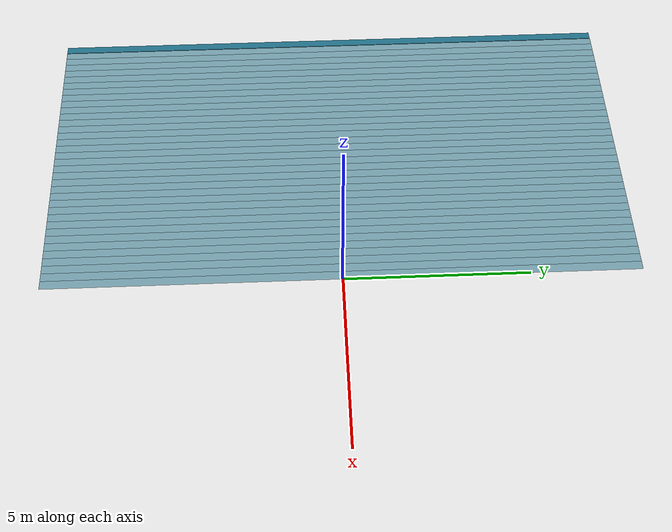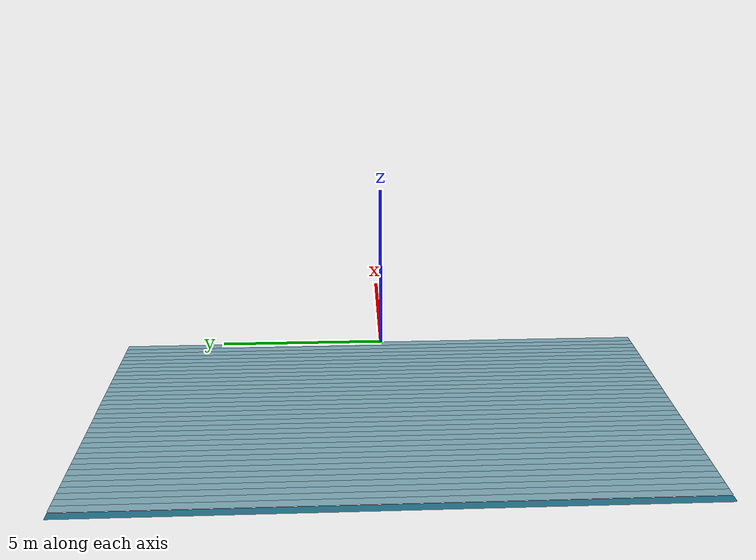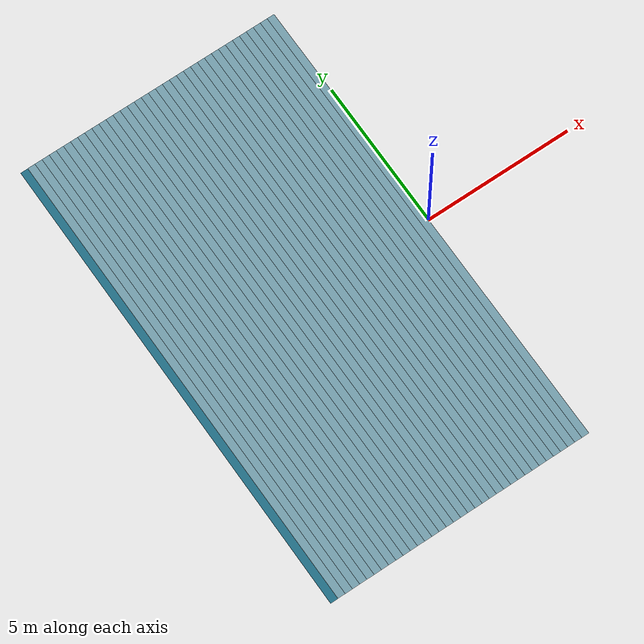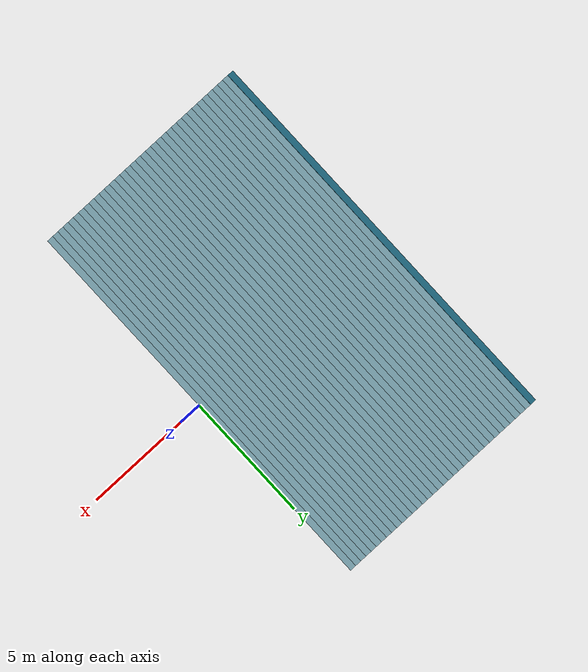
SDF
<sdf version="1.10">
 <world name="OceanWorld">
  <model name="pool_ripple_00">
   <static>true</static>
   <pose>-8.875 0 0 0 0 0</pose>
   <link name="surface">
    <visual name="water">
     <cast_shadows>false</cast_shadows>
     <transparency>0.45</transparency>
     <geometry><plane><normal>0 0 1</normal><size>.251 16</size></plane></geometry>
     <material>
      <ambient>.10 .35 .42 1</ambient>
      <diffuse>.14 .46 .56 1</diffuse>
      <specular>.9 .95 1 1</specular>
      <pbr><metal><metalness>0</metalness><roughness>.16</roughness></metal></pbr>
     </material>
    </visual>
   </link>
  </model>
  <model name="pool_ripple_01">
   <static>true</static>
   <pose>-8.625 0 0 0 0 0</pose>
   <link name="surface">
    <visual name="water">
     <cast_shadows>false</cast_shadows>
     <transparency>0.45</transparency>
     <geometry><plane><normal>0 0 1</normal><size>.251 16</size></plane></geometry>
     <material>
      <ambient>.10 .35 .42 1</ambient>
      <diffuse>.14 .46 .56 1</diffuse>
      <specular>.9 .95 1 1</specular>
      <pbr><metal><metalness>0</metalness><roughness>.16</roughness></metal></pbr>
     </material>
    </visual>
   </link>
  </model>
  <model name="pool_ripple_02">
   <static>true</static>
   <pose>-8.375 0 0 0 0 0</pose>
   <link name="surface">
    <visual name="water">
     <cast_shadows>false</cast_shadows>
     <transparency>0.45</transparency>
     <geometry><plane><normal>0 0 1</normal><size>.251 16</size></plane></geometry>
     <material>
      <ambient>.10 .35 .42 1</ambient>
      <diffuse>.14 .46 .56 1</diffuse>
      <specular>.9 .95 1 1</specular>
      <pbr><metal><metalness>0</metalness><roughness>.16</roughness></metal></pbr>
     </material>
    </visual>
   </link>
  </model>
  <model name="pool_ripple_03">
   <static>true</static>
   <pose>-8.125 0 0 0 0 0</pose>
   <link name="surface">
    <visual name="water">
     <cast_shadows>false</cast_shadows>
     <transparency>0.45</transparency>
     <geometry><plane><normal>0 0 1</normal><size>.251 16</size></plane></geometry>
     <material>
      <ambient>.10 .35 .42 1</ambient>
      <diffuse>.14 .46 .56 1</diffuse>
      <specular>.9 .95 1 1</specular>
      <pbr><metal><metalness>0</metalness><roughness>.16</roughness></metal></pbr>
     </material>
    </visual>
   </link>
  </model>
  <model name="pool_ripple_04">
   <static>true</static>
   <pose>-7.875 0 0 0 0 0</pose>
   <link name="surface">
    <visual name="water">
     <cast_shadows>false</cast_shadows>
     <transparency>0.45</transparency>
     <geometry><plane><normal>0 0 1</normal><size>.251 16</size></plane></geometry>
     <material>
      <ambient>.10 .35 .42 1</ambient>
      <diffuse>.14 .46 .56 1</diffuse>
      <specular>.9 .95 1 1</specular>
      <pbr><metal><metalness>0</metalness><roughness>.16</roughness></metal></pbr>
     </material>
    </visual>
   </link>
  </model>
  <model name="pool_ripple_05">
   <static>true</static>
   <pose>-7.625 0 0 0 0 0</pose>
   <link name="surface">
    <visual name="water">
     <cast_shadows>false</cast_shadows>
     <transparency>0.45</transparency>
     <geometry><plane><normal>0 0 1</normal><size>.251 16</size></plane></geometry>
     <material>
      <ambient>.10 .35 .42 1</ambient>
      <diffuse>.14 .46 .56 1</diffuse>
      <specular>.9 .95 1 1</specular>
      <pbr><metal><metalness>0</metalness><roughness>.16</roughness></metal></pbr>
     </material>
    </visual>
   </link>
  </model>
  <model name="pool_ripple_06">
   <static>true</static>
   <pose>-7.375 0 0 0 0 0</pose>
   <link name="surface">
    <visual name="water">
     <cast_shadows>false</cast_shadows>
     <transparency>0.45</transparency>
     <geometry><plane><normal>0 0 1</normal><size>.251 16</size></plane></geometry>
     <material>
      <ambient>.10 .35 .42 1</ambient>
      <diffuse>.14 .46 .56 1</diffuse>
      <specular>.9 .95 1 1</specular>
      <pbr><metal><metalness>0</metalness><roughness>.16</roughness></metal></pbr>
     </material>
    </visual>
   </link>
  </model>
  <model name="pool_ripple_07">
   <static>true</static>
   <pose>-7.125 0 0 0 0 0</pose>
   <link name="surface">
    <visual name="water">
     <cast_shadows>false</cast_shadows>
     <transparency>0.45</transparency>
     <geometry><plane><normal>0 0 1</normal><size>.251 16</size></plane></geometry>
     <material>
      <ambient>.10 .35 .42 1</ambient>
      <diffuse>.14 .46 .56 1</diffuse>
      <specular>.9 .95 1 1</specular>
      <pbr><metal><metalness>0</metalness><roughness>.16</roughness></metal></pbr>
     </material>
    </visual>
   </link>
  </model>
  <model name="pool_ripple_08">
   <static>true</static>
   <pose>-6.875 0 0 0 0 0</pose>
   <link name="surface">
    <visual name="water">
     <cast_shadows>false</cast_shadows>
     <transparency>0.45</transparency>
     <geometry><plane><normal>0 0 1</normal><size>.251 16</size></plane></geometry>
     <material>
      <ambient>.10 .35 .42 1</ambient>
      <diffuse>.14 .46 .56 1</diffuse>
      <specular>.9 .95 1 1</specular>
      <pbr><metal><metalness>0</metalness><roughness>.16</roughness></metal></pbr>
     </material>
    </visual>
   </link>
  </model>
  <model name="pool_ripple_09">
   <static>true</static>
   <pose>-6.625 0 0 0 0 0</pose>
   <link name="surface">
    <visual name="water">
     <cast_shadows>false</cast_shadows>
     <transparency>0.45</transparency>
     <geometry><plane><normal>0 0 1</normal><size>.251 16</size></plane></geometry>
     <material>
      <ambient>.10 .35 .42 1</ambient>
      <diffuse>.14 .46 .56 1</diffuse>
      <specular>.9 .95 1 1</specular>
      <pbr><metal><metalness>0</metalness><roughness>.16</roughness></metal></pbr>
     </material>
    </visual>
   </link>
  </model>
  <model name="pool_ripple_10">
   <static>true</static>
   <pose>-6.375 0 0 0 0 0</pose>
   <link name="surface">
    <visual name="water">
     <cast_shadows>false</cast_shadows>
     <transparency>0.45</transparency>
     <geometry><plane><normal>0 0 1</normal><size>.251 16</size></plane></geometry>
     <material>
      <ambient>.10 .35 .42 1</ambient>
      <diffuse>.14 .46 .56 1</diffuse>
      <specular>.9 .95 1 1</specular>
      <pbr><metal><metalness>0</metalness><roughness>.16</roughness></metal></pbr>
     </material>
    </visual>
   </link>
  </model>
  <model name="pool_ripple_11">
   <static>true</static>
   <pose>-6.125 0 0 0 0 0</pose>
   <link name="surface">
    <visual name="water">
     <cast_shadows>false</cast_shadows>
     <transparency>0.45</transparency>
     <geometry><plane><normal>0 0 1</normal><size>.251 16</size></plane></geometry>
     <material>
      <ambient>.10 .35 .42 1</ambient>
      <diffuse>.14 .46 .56 1</diffuse>
      <specular>.9 .95 1 1</specular>
      <pbr><metal><metalness>0</metalness><roughness>.16</roughness></metal></pbr>
     </material>
    </visual>
   </link>
  </model>
  <model name="pool_ripple_12">
   <static>true</static>
   <pose>-5.875 0 0 0 0 0</pose>
   <link name="surface">
    <visual name="water">
     <cast_shadows>false</cast_shadows>
     <transparency>0.45</transparency>
     <geometry><plane><normal>0 0 1</normal><size>.251 16</size></plane></geometry>
     <material>
      <ambient>.10 .35 .42 1</ambient>
      <diffuse>.14 .46 .56 1</diffuse>
      <specular>.9 .95 1 1</specular>
      <pbr><metal><metalness>0</metalness><roughness>.16</roughness></metal></pbr>
     </material>
    </visual>
   </link>
  </model>
  <model name="pool_ripple_13">
   <static>true</static>
   <pose>-5.625 0 0 0 0 0</pose>
   <link name="surface">
    <visual name="water">
     <cast_shadows>false</cast_shadows>
     <transparency>0.45</transparency>
     <geometry><plane><normal>0 0 1</normal><size>.251 16</size></plane></geometry>
     <material>
      <ambient>.10 .35 .42 1</ambient>
      <diffuse>.14 .46 .56 1</diffuse>
      <specular>.9 .95 1 1</specular>
      <pbr><metal><metalness>0</metalness><roughness>.16</roughness></metal></pbr>
     </material>
    </visual>
   </link>
  </model>
  <model name="pool_ripple_14">
   <static>true</static>
   <pose>-5.375 0 0 0 0 0</pose>
   <link name="surface">
    <visual name="water">
     <cast_shadows>false</cast_shadows>
     <transparency>0.45</transparency>
     <geometry><plane><normal>0 0 1</normal><size>.251 16</size></plane></geometry>
     <material>
      <ambient>.10 .35 .42 1</ambient>
      <diffuse>.14 .46 .56 1</diffuse>
      <specular>.9 .95 1 1</specular>
      <pbr><metal><metalness>0</metalness><roughness>.16</roughness></metal></pbr>
     </material>
    </visual>
   </link>
  </model>
  <model name="pool_ripple_15">
   <static>true</static>
   <pose>-5.125 0 0 0 0 0</pose>
   <link name="surface">
    <visual name="water">
     <cast_shadows>false</cast_shadows>
     <transparency>0.45</transparency>
     <geometry><plane><normal>0 0 1</normal><size>.251 16</size></plane></geometry>
     <material>
      <ambient>.10 .35 .42 1</ambient>
      <diffuse>.14 .46 .56 1</diffuse>
      <specular>.9 .95 1 1</specular>
      <pbr><metal><metalness>0</metalness><roughness>.16</roughness></metal></pbr>
     </material>
    </visual>
   </link>
  </model>
  <model name="pool_ripple_16">
   <static>true</static>
   <pose>-4.875 0 0 0 0 0</pose>
   <link name="surface">
    <visual name="water">
     <cast_shadows>false</cast_shadows>
     <transparency>0.45</transparency>
     <geometry><plane><normal>0 0 1</normal><size>.251 16</size></plane></geometry>
     <material>
      <ambient>.10 .35 .42 1</ambient>
      <diffuse>.14 .46 .56 1</diffuse>
      <specular>.9 .95 1 1</specular>
      <pbr><metal><metalness>0</metalness><roughness>.16</roughness></metal></pbr>
     </material>
    </visual>
   </link>
  </model>
  <model name="pool_ripple_17">
   <static>true</static>
   <pose>-4.625 0 0 0 0 0</pose>
   <link name="surface">
    <visual name="water">
     <cast_shadows>false</cast_shadows>
     <transparency>0.45</transparency>
     <geometry><plane><normal>0 0 1</normal><size>.251 16</size></plane></geometry>
     <material>
      <ambient>.10 .35 .42 1</ambient>
      <diffuse>.14 .46 .56 1</diffuse>
      <specular>.9 .95 1 1</specular>
      <pbr><metal><metalness>0</metalness><roughness>.16</roughness></metal></pbr>
     </material>
    </visual>
   </link>
  </model>
  <model name="pool_ripple_18">
   <static>true</static>
   <pose>-4.375 0 0 0 0 0</pose>
   <link name="surface">
    <visual name="water">
     <cast_shadows>false</cast_shadows>
     <transparency>0.45</transparency>
     <geometry><plane><normal>0 0 1</normal><size>.251 16</size></plane></geometry>
     <material>
      <ambient>.10 .35 .42 1</ambient>
      <diffuse>.14 .46 .56 1</diffuse>
      <specular>.9 .95 1 1</specular>
      <pbr><metal><metalness>0</metalness><roughness>.16</roughness></metal></pbr>
     </material>
    </visual>
   </link>
  </model>
  <model name="pool_ripple_19">
   <static>true</static>
   <pose>-4.125 0 0 0 0 0</pose>
   <link name="surface">
    <visual name="water">
     <cast_shadows>false</cast_shadows>
     <transparency>0.45</transparency>
     <geometry><plane><normal>0 0 1</normal><size>.251 16</size></plane></geometry>
     <material>
      <ambient>.10 .35 .42 1</ambient>
      <diffuse>.14 .46 .56 1</diffuse>
      <specular>.9 .95 1 1</specular>
      <pbr><metal><metalness>0</metalness><roughness>.16</roughness></metal></pbr>
     </material>
    </visual>
   </link>
  </model>
  <model name="pool_ripple_20">
   <static>true</static>
   <pose>-3.875 0 0 0 0 0</pose>
   <link name="surface">
    <visual name="water">
     <cast_shadows>false</cast_shadows>
     <transparency>0.45</transparency>
     <geometry><plane><normal>0 0 1</normal><size>.251 16</size></plane></geometry>
     <material>
      <ambient>.10 .35 .42 1</ambient>
      <diffuse>.14 .46 .56 1</diffuse>
      <specular>.9 .95 1 1</specular>
      <pbr><metal><metalness>0</metalness><roughness>.16</roughness></metal></pbr>
     </material>
    </visual>
   </link>
  </model>
  <model name="pool_ripple_21">
   <static>true</static>
   <pose>-3.625 0 0 0 0 0</pose>
   <link name="surface">
    <visual name="water">
     <cast_shadows>false</cast_shadows>
     <transparency>0.45</transparency>
     <geometry><plane><normal>0 0 1</normal><size>.251 16</size></plane></geometry>
     <material>
      <ambient>.10 .35 .42 1</ambient>
      <diffuse>.14 .46 .56 1</diffuse>
      <specular>.9 .95 1 1</specular>
      <pbr><metal><metalness>0</metalness><roughness>.16</roughness></metal></pbr>
     </material>
    </visual>
   </link>
  </model>
  <model name="pool_ripple_22">
   <static>true</static>
   <pose>-3.375 0 0 0 0 0</pose>
   <link name="surface">
    <visual name="water">
     <cast_shadows>false</cast_shadows>
     <transparency>0.45</transparency>
     <geometry><plane><normal>0 0 1</normal><size>.251 16</size></plane></geometry>
     <material>
      <ambient>.10 .35 .42 1</ambient>
      <diffuse>.14 .46 .56 1</diffuse>
      <specular>.9 .95 1 1</specular>
      <pbr><metal><metalness>0</metalness><roughness>.16</roughness></metal></pbr>
     </material>
    </visual>
   </link>
  </model>
  <model name="pool_ripple_23">
   <static>true</static>
   <pose>-3.125 0 0 0 0 0</pose>
   <link name="surface">
    <visual name="water">
     <cast_shadows>false</cast_shadows>
     <transparency>0.45</transparency>
     <geometry><plane><normal>0 0 1</normal><size>.251 16</size></plane></geometry>
     <material>
      <ambient>.10 .35 .42 1</ambient>
      <diffuse>.14 .46 .56 1</diffuse>
      <specular>.9 .95 1 1</specular>
      <pbr><metal><metalness>0</metalness><roughness>.16</roughness></metal></pbr>
     </material>
    </visual>
   </link>
  </model>
  <model name="pool_ripple_24">
   <static>true</static>
   <pose>-2.875 0 0 0 0 0</pose>
   <link name="surface">
    <visual name="water">
     <cast_shadows>false</cast_shadows>
     <transparency>0.45</transparency>
     <geometry><plane><normal>0 0 1</normal><size>.251 16</size></plane></geometry>
     <material>
      <ambient>.10 .35 .42 1</ambient>
      <diffuse>.14 .46 .56 1</diffuse>
      <specular>.9 .95 1 1</specular>
      <pbr><metal><metalness>0</metalness><roughness>.16</roughness></metal></pbr>
     </material>
    </visual>
   </link>
  </model>
  <model name="pool_ripple_25">
   <static>true</static>
   <pose>-2.625 0 0 0 0 0</pose>
   <link name="surface">
    <visual name="water">
     <cast_shadows>false</cast_shadows>
     <transparency>0.45</transparency>
     <geometry><plane><normal>0 0 1</normal><size>.251 16</size></plane></geometry>
     <material>
      <ambient>.10 .35 .42 1</ambient>
      <diffuse>.14 .46 .56 1</diffuse>
      <specular>.9 .95 1 1</specular>
      <pbr><metal><metalness>0</metalness><roughness>.16</roughness></metal></pbr>
     </material>
    </visual>
   </link>
  </model>
  <model name="pool_ripple_26">
   <static>true</static>
   <pose>-2.375 0 0 0 0 0</pose>
   <link name="surface">
    <visual name="water">
     <cast_shadows>false</cast_shadows>
     <transparency>0.45</transparency>
     <geometry><plane><normal>0 0 1</normal><size>.251 16</size></plane></geometry>
     <material>
      <ambient>.10 .35 .42 1</ambient>
      <diffuse>.14 .46 .56 1</diffuse>
      <specular>.9 .95 1 1</specular>
      <pbr><metal><metalness>0</metalness><roughness>.16</roughness></metal></pbr>
     </material>
    </visual>
   </link>
  </model>
  <model name="pool_ripple_27">
   <static>true</static>
   <pose>-2.125 0 0 0 0 0</pose>
   <link name="surface">
    <visual name="water">
     <cast_shadows>false</cast_shadows>
     <transparency>0.45</transparency>
     <geometry><plane><normal>0 0 1</normal><size>.251 16</size></plane></geometry>
     <material>
      <ambient>.10 .35 .42 1</ambient>
      <diffuse>.14 .46 .56 1</diffuse>
      <specular>.9 .95 1 1</specular>
      <pbr><metal><metalness>0</metalness><roughness>.16</roughness></metal></pbr>
     </material>
    </visual>
   </link>
  </model>
  <model name="pool_ripple_28">
   <static>true</static>
   <pose>-1.875 0 0 0 0 0</pose>
   <link name="surface">
    <visual name="water">
     <cast_shadows>false</cast_shadows>
     <transparency>0.45</transparency>
     <geometry><plane><normal>0 0 1</normal><size>.251 16</size></plane></geometry>
     <material>
      <ambient>.10 .35 .42 1</ambient>
      <diffuse>.14 .46 .56 1</diffuse>
      <specular>.9 .95 1 1</specular>
      <pbr><metal><metalness>0</metalness><roughness>.16</roughness></metal></pbr>
     </material>
    </visual>
   </link>
  </model>
  <model name="pool_ripple_29">
   <static>true</static>
   <pose>-1.625 0 0 0 0 0</pose>
   <link name="surface">
    <visual name="water">
     <cast_shadows>false</cast_shadows>
     <transparency>0.45</transparency>
     <geometry><plane><normal>0 0 1</normal><size>.251 16</size></plane></geometry>
     <material>
      <ambient>.10 .35 .42 1</ambient>
      <diffuse>.14 .46 .56 1</diffuse>
      <specular>.9 .95 1 1</specular>
      <pbr><metal><metalness>0</metalness><roughness>.16</roughness></metal></pbr>
     </material>
    </visual>
   </link>
  </model>
  <model name="pool_ripple_30">
   <static>true</static>
   <pose>-1.375 0 0 0 0 0</pose>
   <link name="surface">
    <visual name="water">
     <cast_shadows>false</cast_shadows>
     <transparency>0.45</transparency>
     <geometry><plane><normal>0 0 1</normal><size>.251 16</size></plane></geometry>
     <material>
      <ambient>.10 .35 .42 1</ambient>
      <diffuse>.14 .46 .56 1</diffuse>
      <specular>.9 .95 1 1</specular>
      <pbr><metal><metalness>0</metalness><roughness>.16</roughness></metal></pbr>
     </material>
    </visual>
   </link>
  </model>
  <model name="pool_ripple_31">
   <static>true</static>
   <pose>-1.125 0 0 0 0 0</pose>
   <link name="surface">
    <visual name="water">
     <cast_shadows>false</cast_shadows>
     <transparency>0.45</transparency>
     <geometry><plane><normal>0 0 1</normal><size>.251 16</size></plane></geometry>
     <material>
      <ambient>.10 .35 .42 1</ambient>
      <diffuse>.14 .46 .56 1</diffuse>
      <specular>.9 .95 1 1</specular>
      <pbr><metal><metalness>0</metalness><roughness>.16</roughness></metal></pbr>
     </material>
    </visual>
   </link>
  </model>
  <model name="pool_ripple_32">
   <static>true</static>
   <pose>-0.875 0 0 0 0 0</pose>
   <link name="surface">
    <visual name="water">
     <cast_shadows>false</cast_shadows>
     <transparency>0.45</transparency>
     <geometry><plane><normal>0 0 1</normal><size>.251 16</size></plane></geometry>
     <material>
      <ambient>.10 .35 .42 1</ambient>
      <diffuse>.14 .46 .56 1</diffuse>
      <specular>.9 .95 1 1</specular>
      <pbr><metal><metalness>0</metalness><roughness>.16</roughness></metal></pbr>
     </material>
    </visual>
   </link>
  </model>
  <model name="pool_ripple_33">
   <static>true</static>
   <pose>-0.625 0 0 0 0 0</pose>
   <link name="surface">
    <visual name="water">
     <cast_shadows>false</cast_shadows>
     <transparency>0.45</transparency>
     <geometry><plane><normal>0 0 1</normal><size>.251 16</size></plane></geometry>
     <material>
      <ambient>.10 .35 .42 1</ambient>
      <diffuse>.14 .46 .56 1</diffuse>
      <specular>.9 .95 1 1</specular>
      <pbr><metal><metalness>0</metalness><roughness>.16</roughness></metal></pbr>
     </material>
    </visual>
   </link>
  </model>
  <model name="pool_ripple_34">
   <static>true</static>
   <pose>-0.375 0 0 0 0 0</pose>
   <link name="surface">
    <visual name="water">
     <cast_shadows>false</cast_shadows>
     <transparency>0.45</transparency>
     <geometry><plane><normal>0 0 1</normal><size>.251 16</size></plane></geometry>
     <material>
      <ambient>.10 .35 .42 1</ambient>
      <diffuse>.14 .46 .56 1</diffuse>
      <specular>.9 .95 1 1</specular>
      <pbr><metal><metalness>0</metalness><roughness>.16</roughness></metal></pbr>
     </material>
    </visual>
   </link>
  </model>
  <model name="pool_ripple_35">
   <static>true</static>
   <pose>-0.125 0 0 0 0 0</pose>
   <link name="surface">
    <visual name="water">
     <cast_shadows>false</cast_shadows>
     <transparency>0.45</transparency>
     <geometry><plane><normal>0 0 1</normal><size>.251 16</size></plane></geometry>
     <material>
      <ambient>.10 .35 .42 1</ambient>
      <diffuse>.14 .46 .56 1</diffuse>
      <specular>.9 .95 1 1</specular>
      <pbr><metal><metalness>0</metalness><roughness>.16</roughness></metal></pbr>
     </material>
    </visual>
   </link>
  </model>
 </world>
</sdf>
